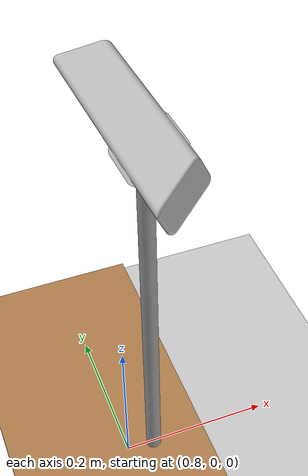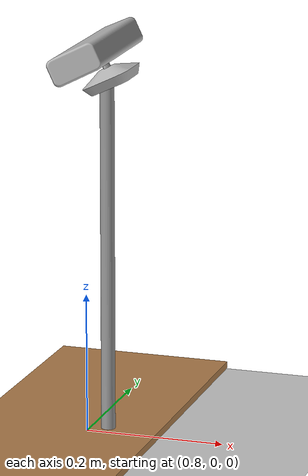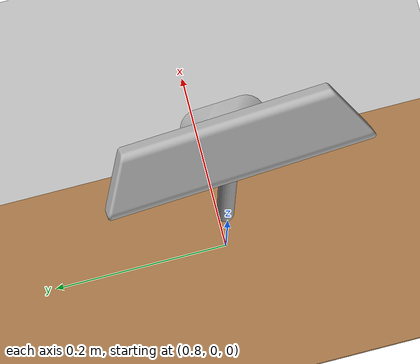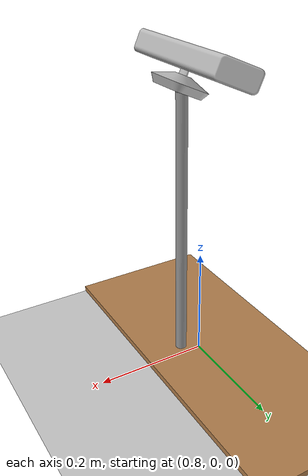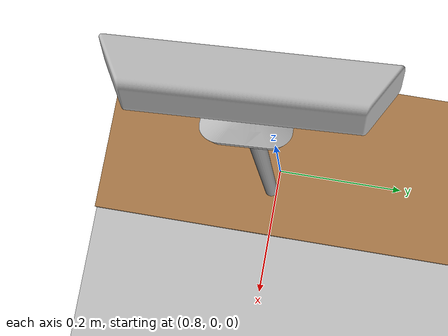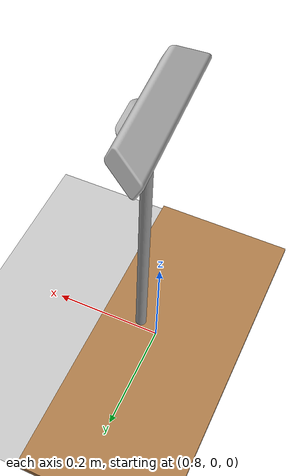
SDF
<?xml version="1.0" ?>

<sdf version="1.5">
<world name='my_world'>
    <light name='sun' type='directional'>
      <cast_shadows>1</cast_shadows>
      <pose frame=''>0 0 10 0 -0 0</pose>
      <diffuse>0.8 0.8 0.8 1</diffuse>
      <specular>0.2 0.2 0.2 1</specular>
      <attenuation>
        <range>1000</range>
        <constant>0.9</constant>
        <linear>0.01</linear>
        <quadratic>0.001</quadratic>
      </attenuation>
      <direction>-0.5 0.1 -0.9</direction>
    </light>
    <model name='ground_plane'>
      <static>1</static>
      <link name='link'>
        <collision name='collision'>
          <geometry>
            <plane>
              <normal>0 0 1</normal>
              <size>100 100</size>
            </plane>
          </geometry>
          <surface>
            <contact>
              <collide_bitmask>65535</collide_bitmask>
              <ode/>
            </contact>
            <friction>
              <ode>
                <mu>100</mu>
                <mu2>50</mu2>
              </ode>
              <torsional>
                <ode/>
              </torsional>
            </friction>
            <bounce/>
          </surface>
          <max_contacts>10</max_contacts>
        </collision>
        <visual name='visual'>
          <cast_shadows>0</cast_shadows>
          <geometry>
            <plane>
              <normal>0 0 1</normal>
              <size>100 100</size>
            </plane>
          </geometry>
          <material>
            <script>
              <uri>file://media/materials/scripts/gazebo.material</uri>
              <name>Gazebo/Grey</name>
            </script>
          </material>
        </visual>
        <self_collide>0</self_collide>
        <enable_wind>0</enable_wind>
        <kinematic>0</kinematic>
      </link>
    </model>
    <gravity>0 0 -9.8</gravity>
    <magnetic_field>6e-06 2.3e-05 -4.2e-05</magnetic_field>
    <atmosphere type='adiabatic'/>
    <physics name='default_physics' default='0' type='ode'>
      <max_step_size>0.001</max_step_size>
      <real_time_factor>1</real_time_factor>
      <real_time_update_rate>1000</real_time_update_rate>
    </physics>
    <scene>
      <ambient>0.4 0.4 0.4 1</ambient>
      <background>0.7 0.7 0.7 1</background>
      <shadows>1</shadows>
    </scene>
    <wind/>
    <spherical_coordinates>
      <surface_model>EARTH_WGS84</surface_model>
      <latitude_deg>0</latitude_deg>
      <longitude_deg>0</longitude_deg>
      <elevation>0</elevation>
      <heading_deg>0</heading_deg>
    </spherical_coordinates>

  <model name="wooden_board">
    <static>1</static>
    <link name="base">

      <pose>0 0 0.00523 0 0 0</pose>
      <inertial>
        <mass>0.2765</mass>
        <inertia>
          <ixx>0.0025148009472833336</ixx>
          <ixy>0</ixy>
          <ixz>0</ixz>
          <iyy>0.00024037001228333334</iyy>
          <iyz>0</iyz>
          <izz>0.002750128908333333</izz>
        </inertia>
      </inertial>

      <collision name="collision">
        <geometry>
          <box>
            <size>1.816 2.502 0.01046</size>
          </box>
        </geometry>
        <surface>
          <contact>
            <!-- Red Pine coefficients for longitudinal axis of the wood
                 according to:
                 http://www.fpl.fs.fed.us/documnts/fplgtr/fplgtr113/ch04.pdf -->
            <poissons_ratio>0.347</poissons_ratio>
            <elastic_modulus>8.8e+09</elastic_modulus>
            <ode>
              <kp>100000</kp>
              <kd>100</kd>
              <max_vel>100.0</max_vel>
              <min_depth>0.001</min_depth>
            </ode>
          </contact>
          <friction>
            <torsional>
              <coefficient>1.0</coefficient>
              <use_patch_radius>0</use_patch_radius>
              <surface_radius>0.01</surface_radius>
            </torsional>
          </friction>
        </surface>
      </collision>

      <visual name="visual">
        <geometry>
          <box>
            <size>1.816 2.502 0.01046</size>
          </box>
        </geometry>
        <material>
          <script>
            <uri>file://media/materials/scripts/gazebo.material</uri>
            <name>Gazebo/Wood</name>
          </script>
        </material>
      </visual>
    </link>
    </model>

    <model name="stand_pole">
    <static>1</static>
    <link name="support">
    <collision name="stand">
        <pose>0.834762 -0.008436 0.25025 0 0 0</pose>
        <geometry>
          <cylinder>
            <radius>0.01</radius>
            <length>0.5</length>
          </cylinder>
        </geometry>
      </collision>
      <visual name="stand">
        <pose>0.834762 -0.008436 0.25025 0 0 0</pose>
        <geometry>
          <cylinder>
            <radius>0.01</radius>
            <length>0.5</length>
          </cylinder>
        </geometry>
        <material>
          <script>
            <uri>file://media/materials/scripts/gazebo.material</uri>
            <name>Gazebo/Grey</name>
          </script>
        </material>
      </visual>
    </link>
    </model>

  <model name="kinect">
    <static>1</static>
    <link name="camera_link">
    <pose>0.794762 -0.008436 0.537514 -0 0.439685 -3.08638</pose>
      <inertial>
        <mass>0.1</mass>
      </inertial>
      <collision name="collision">
        <geometry>
          <box>
            <size>0.073000 0.276000 0.072000</size>
          </box>
        </geometry>
      </collision>
      <visual name="visual">
        <geometry>
          <mesh>
            <uri>model://kinect/meshes/kinect.dae</uri>
          </mesh>
        </geometry>
      </visual>
      <sensor name="camera" type="depth">
        <update_rate>20</update_rate>
        <camera>
          <horizontal_fov>1.047198</horizontal_fov>
          <image>
            <width>640</width>
            <height>480</height>
            <format>R8G8B8</format>
          </image>
          <clip>
            <near>0.05</near>
            <far>3</far>
          </clip>
        </camera>
        <plugin name="camera_link" filename="libgazebo_ros_openni_kinect.so">
          <robotNamespace>/kinect_camera</robotNamespace>
          <baseline>0.2</baseline>
          <alwaysOn>true</alwaysOn>
          <updateRate>10.0</updateRate>
          <cameraName>camera_ir</cameraName>
          <imageTopicName>/camera/color/image_raw</imageTopicName>
          <cameraInfoTopicName>/camera/color/camera_info</cameraInfoTopicName>
          <depthImageTopicName>/camera/depth/image_raw</depthImageTopicName>
          <depthImageCameraInfoTopicName>/camera/depth/camera_info</depthImageCameraInfoTopicName>
          <pointCloudTopicName>/camera/depth/points</pointCloudTopicName>
          <frameName>camera_link</frameName>
          <robotBaseFrame>base_link_camera</robotBaseFrame>
          <pointCloudCutoff>0.5</pointCloudCutoff>
          <pointCloudCutoffMax>3.0</pointCloudCutoffMax>
          <distortionK1>0</distortionK1>
          <distortionK2>0</distortionK2>
          <distortionK3>0</distortionK3>
          <distortionT1>0</distortionT1>
          <distortionT2>0</distortionT2>
          <CxPrime>0</CxPrime>
          <Cx>0</Cx>
          <Cy>0</Cy>
          <focalLength>0</focalLength>
          <hackBaseline>0</hackBaseline>
        </plugin>
      </sensor>
    </link>
  </model>
  </world>
</sdf>
